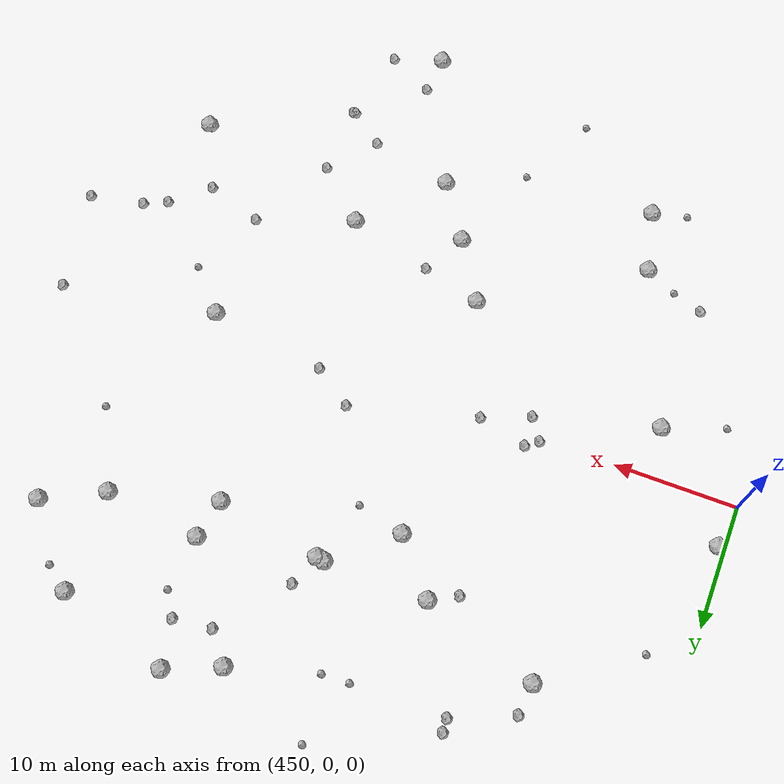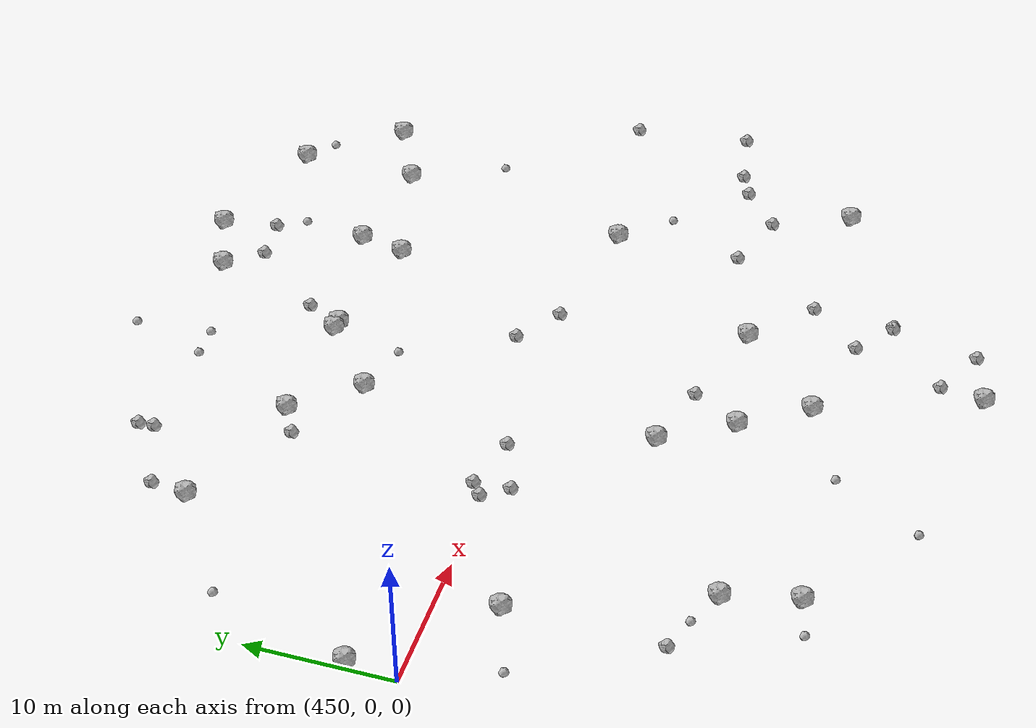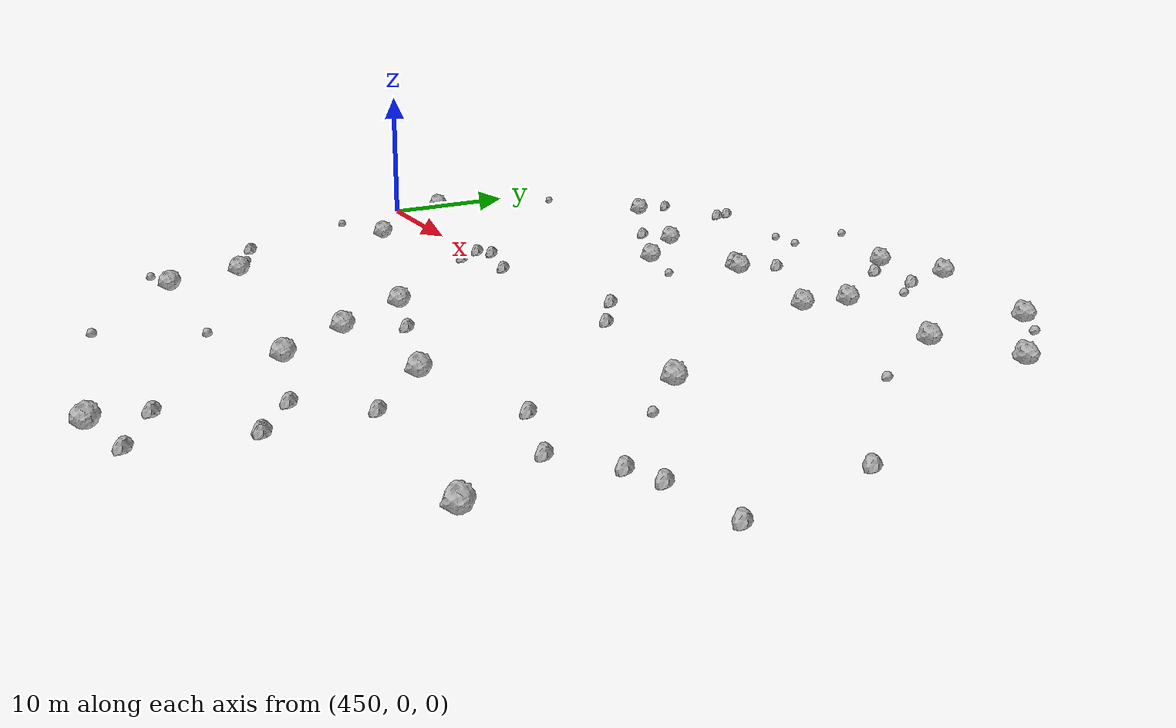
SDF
<sdf version="1.6">
 <world name="default">
  <include><uri>model://sun</uri></include>
  <model name="rock1_12_4">
   <include><uri>model://rock1</uri><pose>457.4386624693798 -4.069626824916529 0.5 0 0 0</pose></include>
  </model>
  <model name="rock1_12_5">
   <include><uri>model://rock1</uri><pose>482.8573564399641 25.14602359735246 0.5 0 0 0</pose></include>
  </model>
  <model name="rock1_12_6">
   <include><uri>model://rock1</uri><pose>487.22162132988956 26.922927726278523 0.5 0 0 0</pose></include>
  </model>
  <model name="rock1_12_7">
   <include><uri>model://rock1</uri><pose>487.8440028417681 13.423481678707049 0.5 0 0 0</pose></include>
  </model>
  <model name="rock1_12_8">
   <include><uri>model://rock1</uri><pose>486.3483670407331 -12.510178916736386 0.5 0 0 0</pose></include>
  </model>
  <model name="rock1_12_9">
   <include><uri>model://rock1</uri><pose>496.37458429934276 15.721982768508688 0.5 0 0 0</pose></include>
  </model>
  <model name="rock1_12_10">
   <include><uri>model://rock1</uri><pose>462.3050033270877 -16.629412686535613 0.5 0 0 0</pose></include>
  </model>
  <model name="rock1_12_11">
   <include><uri>model://rock1</uri><pose>470.17984138191343 15.169456650293505 0.5 0 0 0</pose></include>
  </model>
  <model name="rock1_12_12">
   <include><uri>model://rock1</uri><pose>501.25441239269924 18.11373622510701 0.5 0 0 0</pose></include>
  </model>
  <model name="rock1_12_13">
   <include><uri>model://rock1</uri><pose>474.6043050577314 -9.196387396453716 0.5 0 0 0</pose></include>
  </model>
  <model name="rock1_12_14">
   <include><uri>model://rock1</uri><pose>473.74774625827973 10.98629677299688 0.5 0 0 0</pose></include>
  </model>
  <model name="rock1_12_15">
   <include><uri>model://rock1</uri><pose>501.06344720956525 -16.606448582091403 0.5 0 0 0</pose></include>
  </model>
  <model name="rock1_12_16">
   <include><uri>model://rock1</uri><pose>460.72886919264147 18.333816971610425 0.5 0 0 0</pose></include>
  </model>
  <model name="rock1_12_17">
   <include><uri>model://rock1</uri><pose>463.48898749129546 -21.60002720241666 0.5 0 0 0</pose></include>
  </model>
  <model name="rock1_12_18">
   <include><uri>model://rock1</uri><pose>477.5204767493958 -13.934854405831555 0.5 0 0 0</pose></include>
  </model>
  <model name="rock1_12_19">
   <include><uri>model://rock1</uri><pose>479.27881231022013 14.959594778377564 0.5 0 0 0</pose></include>
  </model>
  <model name="rock1_12_20">
   <include><uri>model://rock1</uri><pose>478.66683842004636 15.06418746688162 0.5 0 0 0</pose></include>
  </model>
  <model name="rock1_12_21">
   <include><uri>model://rock1</uri><pose>494.1191011782795 -0.9616843842309493 0.5 0 0 0</pose></include>
  </model>
  <model name="rock1_12_22">
   <include><uri>model://rock1</uri><pose>488.5319257749275 16.662461007759426 0.5 0 0 0</pose></include>
  </model>
  <model name="rock1_12_23">
   <include><uri>model://rock1</uri><pose>480.45610725791647 -18.378100662861588 0.5 0 0 0</pose></include>
  </model>
  <model name="rock1_12_24">
   <include><uri>model://rock1</uri><pose>496.3454307106996 24.034008566863328 0.5 0 0 0</pose></include>
  </model>
  <model name="rock1_12_25">
   <include><uri>model://rock1</uri><pose>484.60925292146146 -29.207011954315085 0.5 0 0 0</pose></include>
  </model>
  <model name="rock1_12_26">
   <include><uri>model://rock1</uri><pose>450.57982920781325 3.5495295094237633 0.5 0 0 0</pose></include>
  </model>
  <model name="rock2_12_0">
   <include><uri>model://rock2</uri><pose>507.85705290836705 -7.106419697276536 0.3 0 0 0</pose></include>
  </model>
  <model name="rock2_12_1">
   <include><uri>model://rock2</uri><pose>484.5656159766992 0.5395289580003144 0.3 0 0 0</pose></include>
  </model>
  <model name="rock2_12_2">
   <include><uri>model://rock2</uri><pose>467.27146726621817 -1.4828753424613126 0.3 0 0 0</pose></include>
  </model>
  <model name="rock2_12_3">
   <include><uri>model://rock2</uri><pose>471.1078681779161 0.010470138983308175 0.3 0 0 0</pose></include>
  </model>
  <model name="rock2_12_4">
   <include><uri>model://rock2</uri><pose>479.4483042842961 -10.54829264126986 0.3 0 0 0</pose></include>
  </model>
  <model name="rock2_12_5">
   <include><uri>model://rock2</uri><pose>465.8124440855302 24.024081784406675 0.3 0 0 0</pose></include>
  </model>
  <model name="rock2_12_6">
   <include><uri>model://rock2</uri><pose>467.9785373379768 13.991377211343305 0.3 0 0 0</pose></include>
  </model>
  <model name="rock2_12_7">
   <include><uri>model://rock2</uri><pose>506.8007862642494 1.0316465327827302 0.3 0 0 0</pose></include>
  </model>
  <model name="rock2_12_8">
   <include><uri>model://rock2</uri><pose>484.72628651027753 22.78219330468103 0.3 0 0 0</pose></include>
  </model>
  <model name="rock2_12_9">
   <include><uri>model://rock2</uri><pose>490.3237154018917 -16.294760192318524 0.3 0 0 0</pose></include>
  </model>
  <model name="rock2_12_10">
   <include><uri>model://rock2</uri><pose>487.1486209208038 -19.897391713829897 0.3 0 0 0</pose></include>
  </model>
  <model name="rock2_12_11">
   <include><uri>model://rock2</uri><pose>494.1693390449172 -9.824544725502303 0.3 0 0 0</pose></include>
  </model>
  <model name="rock2_12_12">
   <include><uri>model://rock2</uri><pose>457.2755479537285 -14.636065114840033 0.3 0 0 0</pose></include>
  </model>
  <model name="rock2_12_13">
   <include><uri>model://rock2</uri><pose>466.0997980589369 0.26424171038155464 0.3 0 0 0</pose></include>
  </model>
  <model name="rock2_12_14">
   <include><uri>model://rock2</uri><pose>501.61344694222674 -8.809348932722752 0.3 0 0 0</pose></include>
  </model>
  <model name="rock2_12_15">
   <include><uri>model://rock2</uri><pose>484.9361732050357 -26.189936749826753 0.3 0 0 0</pose></include>
  </model>
  <model name="rock2_12_16">
   <include><uri>model://rock2</uri><pose>480.3149449735588 17.51323218146684 0.3 0 0 0</pose></include>
  </model>
  <model name="rock2_12_17">
   <include><uri>model://rock2</uri><pose>498.6406339292246 -11.296898749242288 0.3 0 0 0</pose></include>
  </model>
  <model name="rock2_12_18">
   <include><uri>model://rock2</uri><pose>489.84868114489757 -21.976791660133507 0.3 0 0 0</pose></include>
  </model>
  <model name="rock2_12_19">
   <include><uri>model://rock2</uri><pose>465.87983373991597 22.93910208722687 0.3 0 0 0</pose></include>
  </model>
  <model name="rock2_12_20">
   <include><uri>model://rock2</uri><pose>460.9609600251993 20.895715370018436 0.3 0 0 0</pose></include>
  </model>
  <model name="rock2_12_21">
   <include><uri>model://rock2</uri><pose>503.5054756947064 -7.960003120958941 0.3 0 0 0</pose></include>
  </model>
  <model name="rock2_12_22">
   <include><uri>model://rock2</uri><pose>488.5519959947947 -28.023979849801414 0.3 0 0 0</pose></include>
  </model>
  <model name="rock2_12_23">
   <include><uri>model://rock2</uri><pose>490.0531106724094 -21.955213246185636 0.3 0 0 0</pose></include>
  </model>
  <model name="rock2_12_24">
   <include><uri>model://rock2</uri><pose>481.46656152245066 2.7392078663847386 0.3 0 0 0</pose></include>
  </model>
  <model name="rock2_12_25">
   <include><uri>model://rock2</uri><pose>467.09205109511896 1.0024065487554168 0.3 0 0 0</pose></include>
  </model>
  <model name="rock2_12_26">
   <include><uri>model://rock2</uri><pose>487.87943532833276 23.118021137273537 0.3 0 0 0</pose></include>
  </model>
  <model name="rock3_12_0">
   <include><uri>model://rock3</uri><pose>473.5299263904635 23.001604567703154 0.2 0 0 0</pose></include>
  </model>
  <model name="rock3_12_1">
   <include><uri>model://rock3</uri><pose>475.76482110167996 23.071427541863848 0.2 0 0 0</pose></include>
  </model>
  <model name="rock3_12_2">
   <include><uri>model://rock3</uri><pose>460.59406270035686 -22.418352150936514 0.2 0 0 0</pose></include>
  </model>
  <model name="rock3_12_3">
   <include><uri>model://rock3</uri><pose>453.31713428751846 13.299256423347096 0.2 0 0 0</pose></include>
  </model>
  <model name="rock3_12_4">
   <include><uri>model://rock3</uri><pose>477.59386212469377 9.933054180105557 0.2 0 0 0</pose></include>
  </model>
  <model name="rock3_12_5">
   <include><uri>model://rock3</uri><pose>470.98832609969713 -27.439451763875738 0.2 0 0 0</pose></include>
  </model>
  <model name="rock3_12_6">
   <include><uri>model://rock3</uri><pose>475.2474340407209 28.388412955265174 0.2 0 0 0</pose></include>
  </model>
  <model name="rock3_12_7">
   <include><uri>model://rock3</uri><pose>497.01642207931087 -4.301976192665403 0.2 0 0 0</pose></include>
  </model>
  <model name="rock3_12_8">
   <include><uri>model://rock3</uri><pose>474.2840133493094 -21.339062614051045 0.2 0 0 0</pose></include>
  </model>
  <model name="rock3_12_9">
   <include><uri>model://rock3</uri><pose>499.3368957570731 9.31788570041909 0.2 0 0 0</pose></include>
  </model>
  <model name="rock3_12_10">
   <include><uri>model://rock3</uri><pose>459.7052734164253 -15.50660749769009 0.2 0 0 0</pose></include>
  </model>
  <model name="rock3_12_11">
   <include><uri>model://rock3</uri><pose>498.29950890423 22.514651772910838 0.2 0 0 0</pose></include>
  </model>
  <model name="rock3_12_12">
   <include><uri>model://rock3</uri><pose>452.461835018273 -5.8919422018165974 0.2 0 0 0</pose></include>
  </model>
  <model name="rock3_12_13">
   <include><uri>model://rock3</uri><pose>489.04342287437953 21.165742287655554 0.2 0 0 0</pose></include>
  </model>
 </world>
</sdf>
